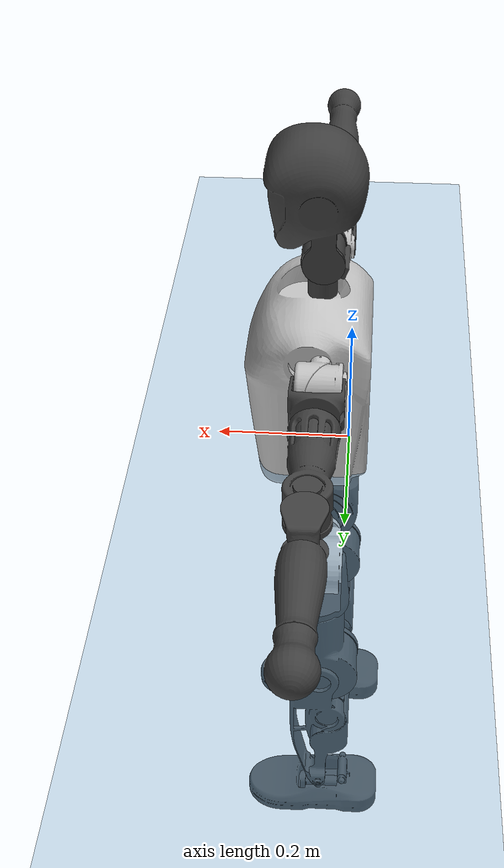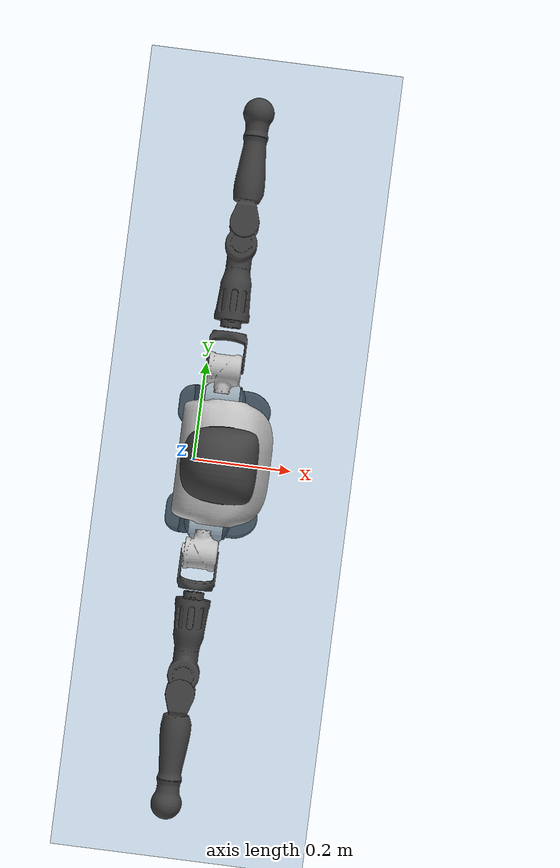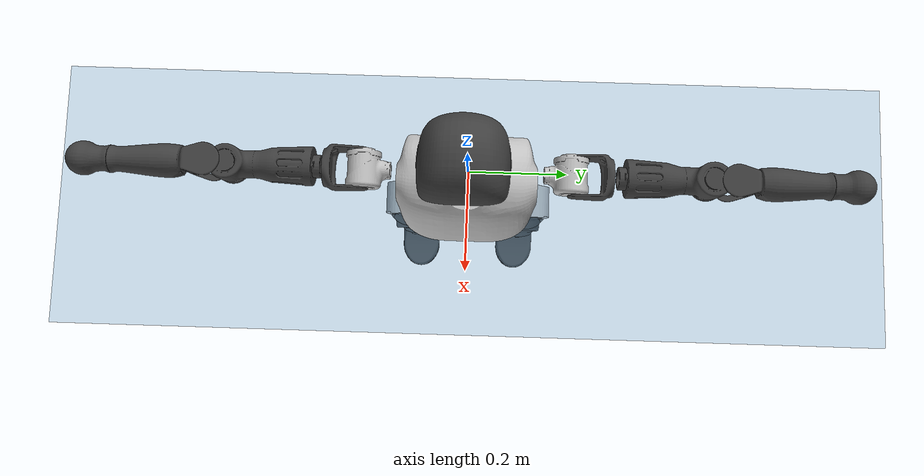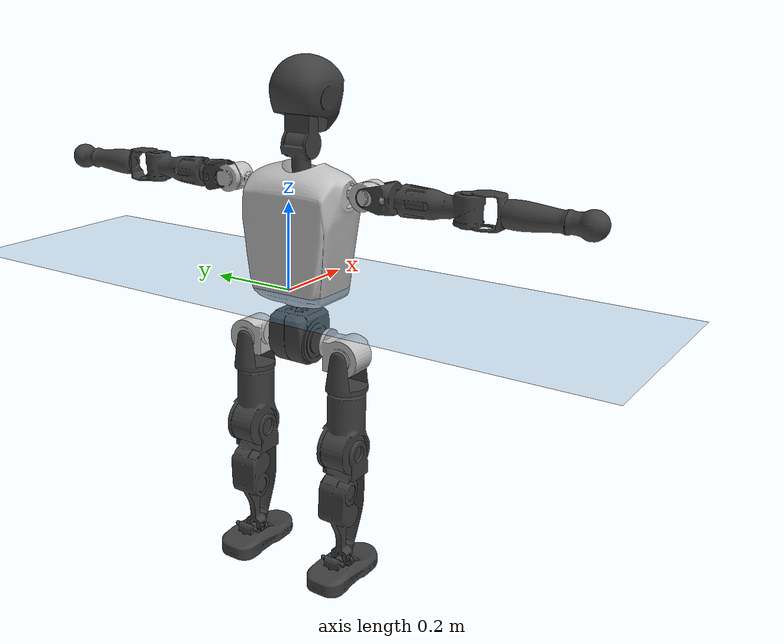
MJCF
<mujoco model="T1">
  <compiler angle="radian" assetdir="assets" balanceinertia="true" inertiafromgeom="false"/>

  <option timestep="0.005" density="1.2" viscosity="2e-05"/>

  <size nkey="1"/>

  <visual>
    <quality shadowsize="8192"/>
    <map shadowclip="0.5"/>
  </visual>

  <default>
    <default class="/">
      <joint armature="0.01" damping="0.01" frictionloss="0.1"/>
      <geom contype="0" conaffinity="0" group="1" solref="-1000 -80"/>
      <site size="0.01 0.005 0.005" group="5"/>
      <general forcelimited="true" biastype="affine" gainprm="25" biasprm="0 -25 -0.6"/>
      <default class="t1">
        <geom rgba="0.25 0.25 0.25 1"/>
        <default class="visual">
          <geom type="mesh" group="2"/>
        </default>
        <default class="collision">
          <geom group="3"/>
        </default>
        <default class="foot">
          <geom size="0.1115 0.05 0.015" type="box" condim="6" group="4" priority="1" solimp="0.015 1 0.015"/>
        </default>
        <default class="reward_collision_sphere">
          <geom group="5" rgba="1 0 0 1"/>
        </default>
      </default>
    </default>
  </default>

  <asset>
    <texture type="skybox" colorspace="auto" name="//unnamed_texture_0" builtin="gradient" rgb1="0.95 0.95 0.95" rgb2="0.95 0.95 0.95" width="100" height="600"/>
    <texture type="2d" colorspace="auto" name="texplane" builtin="checker" rgb1="0.345 0.575 0.748" rgb2="0.345 0.575 0.748" markrgb="1 1 1" width="512" height="512"/>
    <material name="MatPlane" class="/" texture="texplane" texuniform="true" texrepeat="2 2" specular="0.9"/>
    <mesh name="Trunk" class="/" file="Trunk.stl"/>
    <mesh name="H1" class="/" file="H1.stl"/>
    <mesh name="H2" class="/" file="H2.stl"/>
    <mesh name="AL1" class="/" file="AL1.stl"/>
    <mesh name="AL2" class="/" file="AL2.stl"/>
    <mesh name="AL3" class="/" file="AL3.stl"/>
    <mesh name="left_hand_link" class="/" file="left_hand_link.stl"/>
    <mesh name="AR1" class="/" file="AR1.stl"/>
    <mesh name="AR2" class="/" file="AR2.stl"/>
    <mesh name="AR3" class="/" file="AR3.stl"/>
    <mesh name="right_hand_link" class="/" file="right_hand_link.stl"/>
    <mesh name="Waist" class="/" file="Waist.stl"/>
    <mesh name="Hip_Pitch_Left" class="/" file="Hip_Pitch_Left.stl"/>
    <mesh name="Hip_Roll_Left" class="/" file="Hip_Roll_Left.stl"/>
    <mesh name="Hip_Yaw_Left" class="/" file="Hip_Yaw_Left.stl"/>
    <mesh name="Shank_Left" class="/" file="Shank_Left.stl"/>
    <mesh name="Ankle_Cross_Left" class="/" file="Ankle_Cross_Left.stl"/>
    <mesh name="left_foot_link" class="/" file="left_foot_link.stl"/>
    <mesh name="Hip_Pitch_Right" class="/" file="Hip_Pitch_Right.stl"/>
    <mesh name="Hip_Roll_Right" class="/" file="Hip_Roll_Right.stl"/>
    <mesh name="Hip_Yaw_Right" class="/" file="Hip_Yaw_Right.stl"/>
    <mesh name="Shank_Right" class="/" file="Shank_Right.stl"/>
    <mesh name="Ankle_Cross_Right" class="/" file="Ankle_Cross_Right.stl"/>
    <mesh name="right_foot_link" class="/" file="right_foot_link.stl"/>
  </asset>

  <worldbody>
    <geom name="floor" class="/" size="100 100 0.125" type="plane" group="0" material="MatPlane"/>
    <light name="toplight_shadow" class="/" pos="0 0 5" dir="0.0990148 0.0990148 -0.990148" type="directional" ambient="0.04 0.04 0.04" diffuse="0.55 0.55 0.55" specular="0.12 0.12 0.12"/>
    <light name="toplight_fill" class="/" pos="0 0 5" dir="0.0990148 0.0990148 -0.990148" type="directional" castshadow="false" ambient="0.04 0.04 0.04" diffuse="0.3 0.3 0.3" specular="0.08 0.08 0.08"/>
    <body name="trunk" childclass="t1" pos="5.64659e-05 0.00023428 0.000504349" quat="1 -6.23848e-05 0.000120603 -0.000223462">
      <inertial pos="0.0395353 0.00235585 0.113156" quat="0.999844 -0.00430682 -0.0170987 0.00135589" mass="11.8335" diaginertia="0.0157826 0.238 0.0715946"/>
      <joint name="//unnamed_joint_0" type="free" armature="0" damping="0" frictionloss="0"/>
      <geom name="//unnamed_geom_1" class="visual" rgba="0.76 0.76 0.76 1" mesh="Trunk"/>
      <geom name="//unnamed_geom_2" class="collision" size="0.075273 0.100364 0.150546" pos="0.0422834 0 0.126135" type="box"/>
      <geom name="//unnamed_geom_3" class="reward_collision_sphere" size="0.115419" pos="0.0422834 0 0.105113"/>
      <geom name="//unnamed_geom_4" class="reward_collision_sphere" size="0.0150546" pos="0.0422834 0.106681 0"/>
      <geom name="//unnamed_geom_5" class="reward_collision_sphere" size="0.0150546" pos="0.0422834 -0.106681 0"/>
      <geom name="//unnamed_geom_6" class="reward_collision_sphere" size="0.0150546" pos="0.0422834 0.134292 0.189203"/>
      <geom name="//unnamed_geom_7" class="reward_collision_sphere" size="0.0150546" pos="0.0422834 -0.134292 0.189203"/>
      <site name="imu" pos="-0.00645286 -0.00317067 -0.00475898" size="0.0100364"/>
      <camera name="track" pos="0 -2.51014 0" quat="0.707107 0.707107 0 0" mode="trackcom"/>
      <camera name="ego_camera" pos="0.0859762 0 0.441473" quat="-0.5 -0.5 0.5 0.5"/>
      <body name="H1" pos="0.0433083 -0.0028631 0.257707" quat="1 -3.82276e-05 -1.14146e-05 6.87817e-05">
        <inertial pos="-0.00107551 0.000717997 0.0613411" quat="0.771877 -0.0171953 -0.00120852 0.635539" mass="0.433607" diaginertia="4.07624e-05 0.000675611 0.000193012"/>
        <joint name="AAHead_yaw" pos="0 0 0" axis="-0.000182116 5.2031e-05 1" range="-1.56868 1.5162" armature="0.00999888" damping="0.022675" frictionloss="0.087969"/>
        <geom name="//unnamed_geom_8" class="visual" mesh="H1"/>
        <body name="H2" pos="-0.00152712 0.000106236 0.0621063" quat="1 -1.13956e-05 0.000243243 6.12391e-05">
          <inertial pos="0.00535936 -0.00136414 0.104251" quat="0.988108 0.0978358 -0.0798414 -0.0877314" mass="0.642093" diaginertia="0.000353921 0.00604841 0.00228952"/>
          <joint name="Head_pitch" pos="0 0 0" axis="0.00319751 -0.999985 0.00444456" stiffness="0.0005496" range="-1.23068 0.351822" armature="0.0101248" damping="0.0112059" frictionloss="0.091278"/>
          <geom name="//unnamed_geom_9" class="visual" mesh="H2"/>
          <geom name="//unnamed_geom_10" class="collision" size="0.0802912" pos="0.00704723 0 0.115624"/>
          <geom name="//unnamed_geom_11" class="reward_collision_sphere" size="0.0903276" pos="0.0140945 0 0.105113"/>
        </body>
      </body>
      <body name="AL1" pos="0.0396756 0.134057 0.229642" quat="0.999998 -4.91435e-05 0.00137219 -0.0011206">
        <inertial pos="-0.000473998 0.0556751 -0.000476329" quat="0.508731 0.48808 -0.498541 0.504408" mass="0.530044" diaginertia="0.000235611 0.00414774 0.00037441"/>
        <joint name="Left_Shoulder_Pitch" pos="0 0 0" axis="9.44583e-05 1 -0.000111097" stiffness="0.00459197" range="-3.33095 1.27308" armature="0.0100536" damping="0.00915303" frictionloss="0.099572"/>
        <geom name="//unnamed_geom_12" class="visual" rgba="0.76 0.76 0.76 1" mesh="AL1"/>
        <body name="AL2" pos="0.000340308 0.0622925 -0.00174194" quat="1 -0.000384748 -0.000339498 -0.000646349">
          <inertial pos="0.00548645 0.0502001 0.00104454" quat="0.479999 0.52045 -0.490653 0.50793" mass="0.162939" diaginertia="7.02465e-05 0.00107569 0.000234655"/>
          <joint name="Left_Shoulder_Roll" pos="0 0 0" axis="-0.999994 0.00025061 0.00344983" stiffness="0.000856629" range="-1.57114 1.73395" armature="0.00943883" damping="0.0101704" frictionloss="0.105755"/>
          <geom name="//unnamed_geom_13" class="visual" mesh="AL2"/>
          <body name="AL3" pos="0.000572352 0.0787532 0.00185647" quat="1 -9.45582e-06 0.000135761 1.99426e-05">
            <inertial pos="-0.00288202 0.107388 -0.00166494" quat="0.710742 0.703418 -0.00511393 0.00478411" mass="1.09497" diaginertia="0.00233389 0.0405984 0.000813909"/>
            <joint name="Left_Elbow_Pitch" pos="0 0 0" axis="0.0010496 -0.999996 0.00260383" range="-2.29096 2.3233" armature="0.0106662" damping="0.0207007" frictionloss="0.0978858"/>
            <geom name="//unnamed_geom_14" class="visual" mesh="AL3"/>
            <geom name="//unnamed_geom_15" class="collision" size="0.0301092 0.075273" pos="0 0.0627535 0" quat="0.707105 0.707108 0 0" type="cylinder"/>
            <geom name="//unnamed_geom_16" class="reward_collision_sphere" size="0.036131"/>
            <body name="left_hand_link" pos="0.000756197 0.187745 -0.0021356" quat="1 0.000129233 0.000424995 4.98237e-05">
              <inertial pos="8.79368e-05 0.138294 0.000590197" quat="0.70595 0.708256 -0.0029839 0.000189337" mass="0.327161" diaginertia="0.00137419 0.025172 0.00027875"/>
              <joint name="Left_Elbow_Yaw" pos="0 0 0" axis="-0.00642414 -0.000111701 0.999979" stiffness="0.0100857" range="-2.49871 -0.00870118" armature="0.0103239" damping="0.000173112" frictionloss="0.112671"/>
              <geom name="//unnamed_geom_17" class="visual" mesh="left_hand_link"/>
              <geom name="//unnamed_geom_18" class="collision" size="0.0301092 0.0878185" pos="0 0.163159 0" quat="0.707105 0.707108 0 0" type="cylinder"/>
              <geom name="//unnamed_geom_19" class="reward_collision_sphere" size="0.050182"/>
              <geom name="//unnamed_geom_20" class="reward_collision_sphere" size="0.0351274" pos="0 0.138058 0"/>
              <geom name="//unnamed_geom_21" class="reward_collision_sphere" size="0.0351274" pos="0 0.26984 0"/>
            </body>
          </body>
        </body>
      </body>
      <body name="AR1" pos="0.0392973 -0.132874 0.228914" quat="0.999999 0.000117649 0.00118798 -0.000156641">
        <inertial pos="-0.00242605 -0.0567258 -0.00285531" quat="0.508419 0.501709 -0.505291 0.48423" mass="0.553709" diaginertia="0.000237811 0.00406212 0.000385342"/>
        <joint name="Right_Shoulder_Pitch" pos="0 0 0" axis="-7.32982e-05 -1 0.000175503" stiffness="0.00658598" range="-1.22393 3.30095" armature="0.00986269" damping="0" frictionloss="0.0867978"/>
        <geom name="//unnamed_geom_22" class="visual" rgba="0.76 0.76 0.76 1" mesh="AR1"/>
        <body name="AR2" pos="-0.00189949 -0.0586647 0.000739671" quat="1 2.29766e-05 0.000154919 -8.09051e-05">
          <inertial pos="0.00136061 -0.0501385 -0.000941081" quat="0.508107 0.488191 -0.504485 0.498991" mass="0.160832" diaginertia="7.06265e-05 0.00106056 0.000230462"/>
          <joint name="Right_Shoulder_Roll" pos="0 0 0" axis="-0.999996 -0.00240769 0.00141627" stiffness="0.00650158" range="-1.74176 1.56507" armature="0.0100435" damping="0" frictionloss="0.0956434"/>
          <geom name="//unnamed_geom_23" class="visual" mesh="AR2"/>
          <body name="AR3" pos="-0.00103988 -0.0750265 -0.000294824" quat="1 -0.000740711 0.000359355 7.82995e-05">
            <inertial pos="-0.000976574 -0.10683 0.000967496" quat="0.705694 0.708466 -0.00329343 -0.00774059" mass="1.05222" diaginertia="0.00227621 0.039215 0.000815048"/>
            <joint name="Right_Elbow_Pitch" pos="0 0 0" axis="0.00127464 0.999999 0.000622833" range="-2.25605 2.2535" armature="0.0100336" damping="0.00859684" frictionloss="0.095002"/>
            <geom name="//unnamed_geom_24" class="visual" mesh="AR3"/>
            <geom name="//unnamed_geom_25" class="collision" size="0.0301092 0.075273" pos="0 -0.0627535 0" quat="0.707105 0.707108 0 0" type="cylinder"/>
            <geom name="//unnamed_geom_26" class="reward_collision_sphere" size="0.036131"/>
            <body name="right_hand_link" pos="-0.00164843 -0.182175 0.00228249" quat="1 -0.000877863 0.000407402 0.000107573">
              <inertial pos="-0.000149067 -0.135402 0.00060599" quat="0.707999 0.706196 0.00470946 0.001746" mass="0.339198" diaginertia="0.00142009 0.0253564 0.0002778"/>
              <joint name="Right_Elbow_Yaw" pos="0 0 0" axis="-0.000118499 -0.000732315 1" stiffness="0.00113126" range="0.032644 2.4296" armature="0.0100949" damping="0.00870014" frictionloss="0.114064"/>
              <geom name="//unnamed_geom_27" class="visual" mesh="right_hand_link"/>
              <geom name="//unnamed_geom_28" class="collision" size="0.0301092 0.0878185" pos="0 -0.163159 0" quat="0.707105 0.707108 0 0" type="cylinder"/>
              <geom name="//unnamed_geom_29" class="reward_collision_sphere" size="0.050182"/>
              <geom name="//unnamed_geom_30" class="reward_collision_sphere" size="0.0351274" pos="0 -0.138058 0"/>
              <geom name="//unnamed_geom_31" class="reward_collision_sphere" size="0.0351274" pos="0 -0.26984 0"/>
            </body>
          </body>
        </body>
      </body>
      <body name="Waist" pos="0.0414959 0.000613535 -0.123154" quat="1 0.000144179 -0.000100961 4.04991e-05">
        <inertial pos="-0.00101919 -0.00154227 0.00657781" quat="0.983837 0.00220306 -0.179015 0.0037923" mass="2.49177" diaginertia="0.000887404 0.0161384 0.00595783"/>
        <joint name="Waist" pos="0 0 0" axis="0.00118358 -0.00168364 0.999998" stiffness="0.000588474" range="-1.5942 1.56685" armature="0.0109827" damping="0.018264" frictionloss="0.10153"/>
        <geom name="//unnamed_geom_32" class="visual" mesh="Waist"/>
        <body name="Hip_Pitch_Left" pos="-0.000633393 0.133173 -0.00191576" quat="1 0.000155716 -0.000171509 -0.000224629">
          <inertial pos="0.000350814 -0.00693359 -0.0172051" quat="0.973741 0.227159 0.0146715 0.00351129" mass="1.06765" diaginertia="0.000313559 0.00465587 0.00160269"/>
          <joint name="Left_Hip_Pitch" pos="0 0 0" axis="5.65634e-06 0.999997 -0.00244854" stiffness="0.00244166" range="-1.80136 1.62578" armature="0.0113617" damping="0.0169278" frictionloss="0.0988182"/>
          <geom name="//unnamed_geom_33" class="visual" rgba="0.76 0.76 0.76 1" mesh="Hip_Pitch_Left"/>
          <body name="Hip_Roll_Left" pos="0.00245048 -0.00166824 -0.0230068" quat="1 -0.000115672 7.20257e-05 0.000117889">
            <inertial pos="0.000163879 4.48184e-05 -0.0558466" quat="0.715527 -0.00628656 -0.0117706 0.698457" mass="0.374588" diaginertia="0.000292103 0.00476427 0.000655199"/>
            <joint name="Left_Hip_Roll" pos="0 0 0" axis="-0.999936 0.000161398 -0.0112858" stiffness="0.00922896" range="-1.56582 0.181714" armature="0.0113796" damping="0.0145674" frictionloss="0.0939531"/>
            <geom name="//unnamed_geom_34" class="visual" mesh="Hip_Roll_Left"/>
            <geom name="//unnamed_geom_35" class="reward_collision_sphere" size="0.0552002"/>
            <body name="Hip_Yaw_Left" pos="-0.00196941 -0.00127051 -0.0838691" quat="1 0.000437929 0.000309317 -8.35559e-05">
              <inertial pos="-0.00751 -0.000981136 -0.0929015" quat="0.69698 -0.0342725 -0.028554 0.715702" mass="2.19692" diaginertia="0.00444544 0.0756004 0.00330223"/>
              <joint name="Left_Hip_Yaw" pos="0 0 0" axis="-0.00237958 -0.00536975 -0.999983" stiffness="0.00344084" range="-1.03525 1.06047" armature="0.0101207" damping="0.00173653" frictionloss="0.101781"/>
              <geom name="//unnamed_geom_36" class="visual" mesh="Hip_Yaw_Left"/>
              <geom name="//unnamed_geom_37" class="collision" size="0.050182 0.0802912" type="cylinder"/>
              <body name="Shank_Left" pos="-0.00706397 -0.000116763 -0.141691" quat="1 4.77022e-05 -2.21198e-05 -5.22978e-05">
                <inertial pos="-0.00327251 0.00306761 -0.128057" quat="0.99757 0.00152906 -0.0247213 0.0651261" mass="1.6831" diaginertia="0.00596806 0.107736 0.00233927"/>
                <joint name="Left_Knee_Pitch" pos="0 0 0" axis="-0.000654192 0.999987 -0.00505304" range="0.0120455 2.33034" armature="0.010153" damping="0.0136563" frictionloss="0.105749"/>
                <geom name="//unnamed_geom_38" class="visual" mesh="Shank_Left"/>
                <geom name="//unnamed_geom_39" class="collision" size="0.050182 0.075273" pos="0 0 -0.126135" type="cylinder"/>
                <geom name="//unnamed_geom_40" class="reward_collision_sphere" size="0.0652366"/>
                <body name="Ankle_Cross_Left" pos="-0.000702484 -0.000594477 -0.291962" quat="1 -0.000123389 -6.77283e-05 -0.00026557">
                  <inertial pos="-0.00280897 0.00235804 -0.00723614" quat="0.444062 0.548057 0.545247 0.452932" mass="0.0765329" diaginertia="5.2375e-06 7.86185e-05 1.46479e-05"/>
                  <joint name="Left_Ankle_Pitch" pos="0 0 0" axis="4.50334e-05 1 -3.91189e-05" range="-0.814456 0.32947" armature="0.0096141" damping="0.012875" frictionloss="0.0967993"/>
                  <geom name="//unnamed_geom_41" class="visual" mesh="Ankle_Cross_Left"/>
                  <body name="left_foot_link" pos="0.000646645 -0.00201581 -0.0103563" quat="1 0.000136849 -1.16724e-06 0.000156104">
                    <inertial pos="-0.00258627 -0.000120202 -0.0121262" quat="-0.00145164 0.619174 -0.0023647 0.785249" mass="0.670612" diaginertia="0.000437728 0.00729774 0.00279729"/>
                    <joint name="Left_Ankle_Roll" pos="0 0 0" axis="-0.999999 0.00109038 -0.000703927" range="-0.430993 0.441833" armature="0.010162" damping="0.0141218" frictionloss="0.0995966"/>
                    <geom name="//unnamed_geom_42" class="visual" mesh="left_foot_link"/>
                    <geom name="left_foot" class="foot" size="0.10511 0.0480769 0.0150761" pos="0.00704723 0 -0.0157669"/>
                    <geom name="//unnamed_geom_44" class="reward_collision_sphere" size="0.0521893" pos="0.00704723 0 -0.0157669"/>
                    <geom name="//unnamed_geom_45" class="reward_collision_sphere" size="0.0301092" pos="0.0669487 -0.0288666 -0.0157669"/>
                    <geom name="//unnamed_geom_46" class="reward_collision_sphere" size="0.0301092" pos="-0.0493306 -0.0288666 -0.0157669"/>
                    <site name="left_foot" class="foot" pos="0.00704723 0 -0.0157669" size="0.0100364"/>
                  </body>
                </body>
              </body>
            </body>
          </body>
        </body>
        <body name="Hip_Pitch_Right" pos="-0.000231818 -0.133715 0.000545516" quat="0.999999 0.000701792 0.000665157 -0.000622528">
          <inertial pos="-0.00221824 0.0100964 -0.0160796" quat="0.973714 -0.226994 0.0177213 -0.00637909" mass="1.05689" diaginertia="0.000322114 0.0047264 0.00159317"/>
          <joint name="Right_Hip_Pitch" pos="0 0 0" axis="-0.00120439 -0.999996 -0.00251463" range="-1.57124 1.74656" armature="0.00906186" damping="0.0102426" frictionloss="0.0988167"/>
          <geom name="//unnamed_geom_47" class="visual" rgba="0.76 0.76 0.76 1" mesh="Hip_Pitch_Right"/>
          <body name="Hip_Roll_Right" pos="0.00218635 0.000667375 -0.0233302" quat="1 0.000192886 0.000618805 0.000140711">
            <inertial pos="0.00112947 -0.0005665 -0.0545484" quat="0.7164 -0.00613342 -0.00424313 0.69765" mass="0.39071" diaginertia="0.000304012 0.0048865 0.000663585"/>
            <joint name="Right_Hip_Roll" pos="0 0 0" axis="-0.999993 0.00344004 -0.00127614" stiffness="8.7359e-05" range="-0.151022 1.59239" armature="0.0101134" damping="0.0101733" frictionloss="0.105438"/>
            <geom name="//unnamed_geom_48" class="visual" mesh="Hip_Roll_Right"/>
            <geom name="//unnamed_geom_49" class="reward_collision_sphere" size="0.0552002"/>
            <body name="Hip_Yaw_Right" pos="0.000175225 0.000839746 -0.0872027" quat="1 0.000158911 -0.000402423 0.000451092">
              <inertial pos="-0.00432494 -0.00148973 -0.0965631" quat="0.713916 -0.0331985 -0.0320141 0.69871" mass="2.14069" diaginertia="0.00445246 0.0793551 0.00323054"/>
              <joint name="Right_Hip_Yaw" pos="0 0 0" axis="-0.0137052 0.00442662 -0.999896" stiffness="0.00203473" range="-1.01732 0.987635" armature="0.0113611" damping="0" frictionloss="0.100699"/>
              <geom name="//unnamed_geom_50" class="visual" mesh="Hip_Yaw_Right"/>
              <geom name="//unnamed_geom_51" class="collision" size="0.050182 0.0802912" type="cylinder"/>
              <body name="Shank_Right" pos="-0.0100307 -0.000260378 -0.138812" quat="1 0.000605498 -0.000195717 0.000216258">
                <inertial pos="-0.00370032 -0.000951248 -0.131454" quat="0.999212 -0.00201836 -0.0241413 -0.031444" mass="1.86594" diaginertia="0.00637665 0.110524 0.00258634"/>
                <joint name="Right_Knee_Pitch" pos="0 0 0" axis="-0.00230833 -0.999973 0.00692738" stiffness="0.00293835" range="-2.28571 -0.00658632" armature="0.0113312" damping="0.0162114" frictionloss="0.0992953"/>
                <geom name="//unnamed_geom_52" class="visual" mesh="Shank_Right"/>
                <geom name="//unnamed_geom_53" class="collision" size="0.050182 0.075273" pos="0 0 -0.126135" type="cylinder"/>
                <geom name="//unnamed_geom_54" class="reward_collision_sphere" size="0.0652366"/>
                <body name="Ankle_Cross_Right" pos="-0.000908887 -0.00134053 -0.295078" quat="1 5.03393e-05 0.000305026 -3.71315e-05">
                  <inertial pos="-0.00272119 -0.00147956 -0.00839592" quat="0.44238 0.550693 0.551782 0.443367" mass="0.074466" diaginertia="5.20075e-06 8.24656e-05 1.47695e-05"/>
                  <joint name="Right_Ankle_Pitch" pos="0 0 0" axis="-0.0044678 -0.999989 0.00120531" range="-0.403682 0.814829" armature="0.010077" damping="0.00675643" frictionloss="0.105714"/>
                  <geom name="//unnamed_geom_55" class="visual" mesh="Ankle_Cross_Right"/>
                  <body name="right_foot_link" pos="0.00280071 -0.000707729 -0.0141245" quat="1 2.50418e-05 -2.86453e-05 -4.29602e-05">
                    <inertial pos="-0.00273871 0.000828685 -0.00967262" quat="2.75748e-05 0.620728 -0.00166814 0.784024" mass="0.696348" diaginertia="0.000474081 0.0072556 0.00282591"/>
                    <joint name="Right_Ankle_Roll" pos="0 0 0" axis="-0.999968 0.00644638 0.00478286" range="-0.492908 0.442036" armature="0.00973185" damping="0" frictionloss="0.0961937"/>
                    <geom name="//unnamed_geom_56" class="visual" mesh="right_foot_link"/>
                    <geom name="right_foot" class="foot" size="0.10459 0.0451759 0.0149385" pos="0.00704723 0 -0.0157669"/>
                    <geom name="//unnamed_geom_58" class="reward_collision_sphere" size="0.0401456"/>
                    <geom name="//unnamed_geom_59" class="reward_collision_sphere" size="0.0301092" pos="0.00704723 0 -0.0157669"/>
                    <geom name="//unnamed_geom_60" class="reward_collision_sphere" size="0.0301092" pos="0.0669487 0.0288666 -0.0157669"/>
                    <geom name="//unnamed_geom_61" class="reward_collision_sphere" size="0.0301092" pos="-0.0493306 0.0288666 -0.0157669"/>
                    <site name="right_foot" class="foot" pos="0.00704723 0 -0.0157669" size="0.0100364"/>
                  </body>
                </body>
              </body>
            </body>
          </body>
        </body>
      </body>
    </body>
  </worldbody>

  <contact>
    <pair class="/" geom1="floor" geom2="left_foot" name="//unnamed_contact_0"/>
    <pair class="/" geom1="floor" geom2="right_foot" name="//unnamed_contact_1"/>
  </contact>

  <actuator>
    <general name="AAHead_yaw" class="/" joint="AAHead_yaw" forcerange="-6.80857 6.80857" gainprm="23.6087" biasprm="0 -23.6087 -0.599982"/>
    <general name="Head_pitch" class="/" joint="Head_pitch" forcerange="-6.99796 6.99796" gainprm="23.6087" biasprm="0 -23.6087 -0.599982"/>
    <general name="Left_Shoulder_Pitch" class="/" joint="Left_Shoulder_Pitch" forcerange="-16.9785 16.9785" gainprm="23.6087" biasprm="0 -23.6087 -0.599982"/>
    <general name="Left_Shoulder_Roll" class="/" joint="Left_Shoulder_Roll" forcerange="-18.3517 18.3517" gainprm="23.6087" biasprm="0 -23.6087 -0.599982"/>
    <general name="Left_Elbow_Pitch" class="/" joint="Left_Elbow_Pitch" forcerange="-18.1533 18.1533" gainprm="23.6087" biasprm="0 -23.6087 -0.599982"/>
    <general name="Left_Elbow_Yaw" class="/" joint="Left_Elbow_Yaw" forcerange="-18.6107 18.6107" gainprm="23.6087" biasprm="0 -23.6087 -0.599982"/>
    <general name="Right_Shoulder_Pitch" class="/" joint="Right_Shoulder_Pitch" forcerange="-17.8684 17.8684" gainprm="23.6087" biasprm="0 -23.6087 -0.599982"/>
    <general name="Right_Shoulder_Roll" class="/" joint="Right_Shoulder_Roll" forcerange="-17.2757 17.2757" gainprm="23.6087" biasprm="0 -23.6087 -0.599982"/>
    <general name="Right_Elbow_Pitch" class="/" joint="Right_Elbow_Pitch" forcerange="-19.9315 19.9315" gainprm="23.6087" biasprm="0 -23.6087 -0.599982"/>
    <general name="Right_Elbow_Yaw" class="/" joint="Right_Elbow_Yaw" forcerange="-17.6617 17.6617" gainprm="23.6087" biasprm="0 -23.6087 -0.599982"/>
    <general name="Waist" class="/" joint="Waist" forcerange="-30.1683 30.1683" gainprm="23.6087" biasprm="0 -23.6087 -0.599982"/>
    <general name="Left_Hip_Pitch" class="/" joint="Left_Hip_Pitch" forcerange="-46.0272 46.0272" gainprm="23.6087" biasprm="0 -23.6087 -0.599982"/>
    <general name="Left_Hip_Roll" class="/" joint="Left_Hip_Roll" forcerange="-32.7821 32.7821" gainprm="23.6087" biasprm="0 -23.6087 -0.599982"/>
    <general name="Left_Hip_Yaw" class="/" joint="Left_Hip_Yaw" forcerange="-27.2541 27.2541" gainprm="23.6087" biasprm="0 -23.6087 -0.599982"/>
    <general name="Left_Knee_Pitch" class="/" joint="Left_Knee_Pitch" forcerange="-58.0239 58.0239" gainprm="23.6087" biasprm="0 -23.6087 -0.599982"/>
    <general name="Left_Ankle_Pitch" class="/" joint="Left_Ankle_Pitch" forcerange="-20.0144 20.0144" gainprm="23.6087" biasprm="0 -23.6087 -0.599982"/>
    <general name="Left_Ankle_Roll" class="/" joint="Left_Ankle_Roll" forcerange="-16.5874 16.5874" gainprm="23.6087" biasprm="0 -23.6087 -0.599982"/>
    <general name="Right_Hip_Pitch" class="/" joint="Right_Hip_Pitch" forcerange="-45.2768 45.2768" gainprm="23.6087" biasprm="0 -23.6087 -0.599982"/>
    <general name="Right_Hip_Roll" class="/" joint="Right_Hip_Roll" forcerange="-30.343 30.343" gainprm="23.6087" biasprm="0 -23.6087 -0.599982"/>
    <general name="Right_Hip_Yaw" class="/" joint="Right_Hip_Yaw" forcerange="-33.211 33.211" gainprm="23.6087" biasprm="0 -23.6087 -0.599982"/>
    <general name="Right_Knee_Pitch" class="/" joint="Right_Knee_Pitch" forcerange="-60.078 60.078" gainprm="23.6087" biasprm="0 -23.6087 -0.599982"/>
    <general name="Right_Ankle_Pitch" class="/" joint="Right_Ankle_Pitch" forcerange="-20.9126 20.9126" gainprm="23.6087" biasprm="0 -23.6087 -0.599982"/>
    <general name="Right_Ankle_Roll" class="/" joint="Right_Ankle_Roll" forcerange="-14.2404 14.2404" gainprm="23.6087" biasprm="0 -23.6087 -0.599982"/>
  </actuator>

  <sensor>
    <gyro site="imu" name="imu_angular_velocity"/>
    <velocimeter site="imu" name="imu_linear_velocity"/>
    <framelinvel objtype="site" objname="left_foot" name="left_foot_global_linear_velocity"/>
    <framelinvel objtype="site" objname="right_foot" name="right_foot_global_linear_velocity"/>
  </sensor>

  <keyframe>
    <key name="home" qpos="0 0 0.6385 1 0 0 0 0 0 0 1.4 0 -0.4 0 -1.4 0 0.4 0 -0.4 0 0 0.8 -0.4 0 0.4 0 0 -0.8 0.4 0"/>
  </keyframe>
</mujoco>
